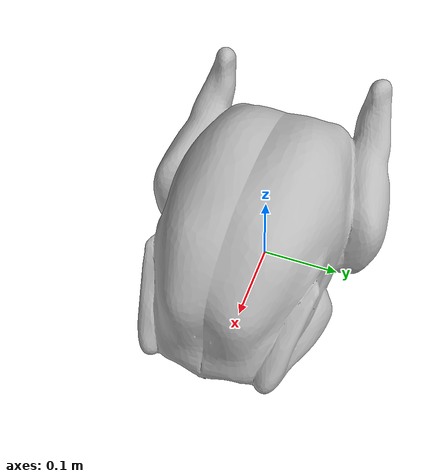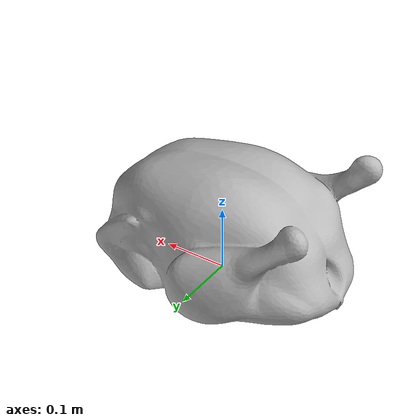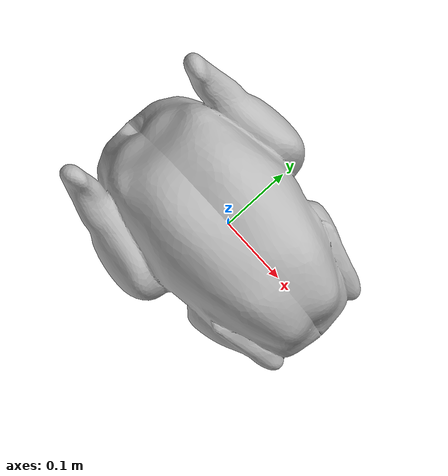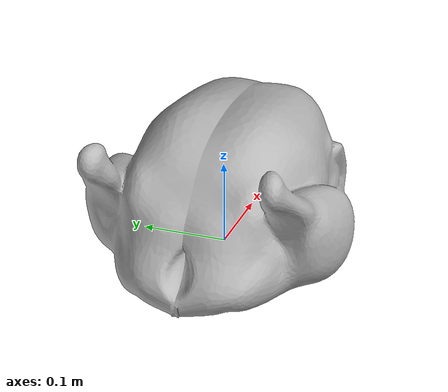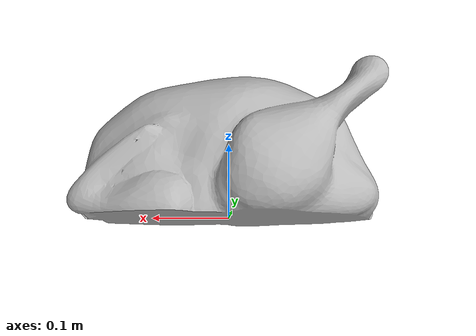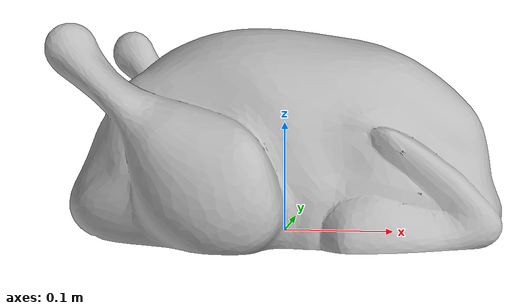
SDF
<sdf version='1.5'>
  <!-- Draw Model -->
  <model name="turkey">
    <static>true</static>
    <link name="turkey">
      <collision name="collision">
        <geometry>
          <mesh>
            <uri>model://turkey/meshes/STL/turkey.stl</uri>
          </mesh>
        </geometry>
      </collision>

      <visual name="visual">
        <geometry>
          <mesh>
            <uri>model://turkey/meshes/DAE/turkey.dae</uri>
          </mesh>
        </geometry>
      </visual>
    </link>
  </model>
</sdf>
